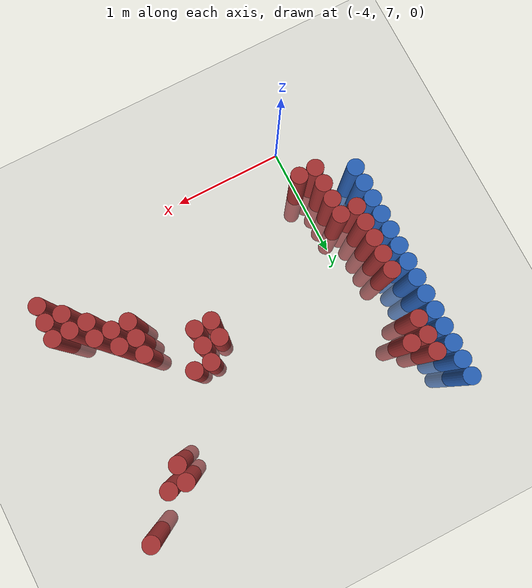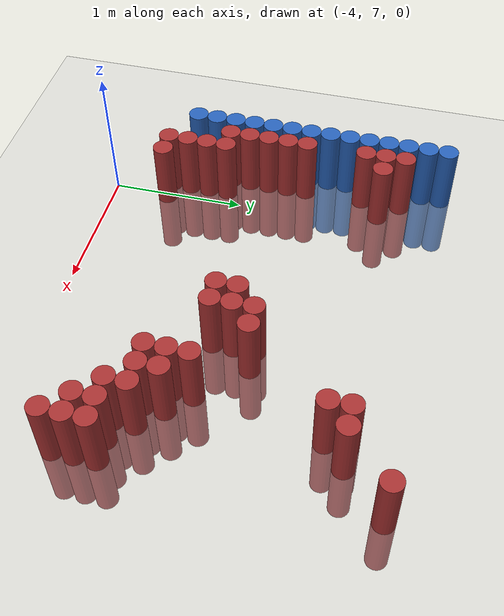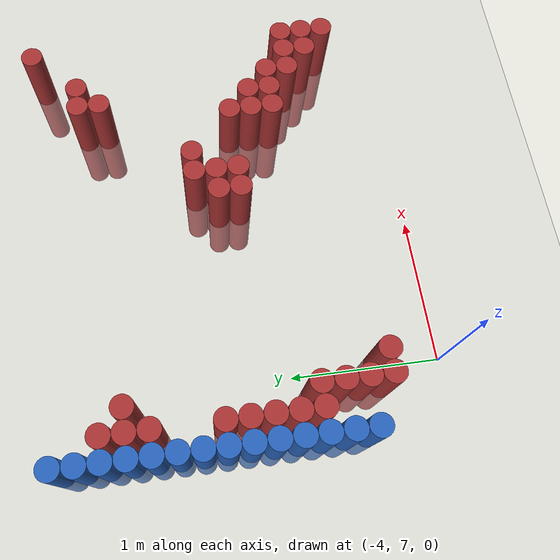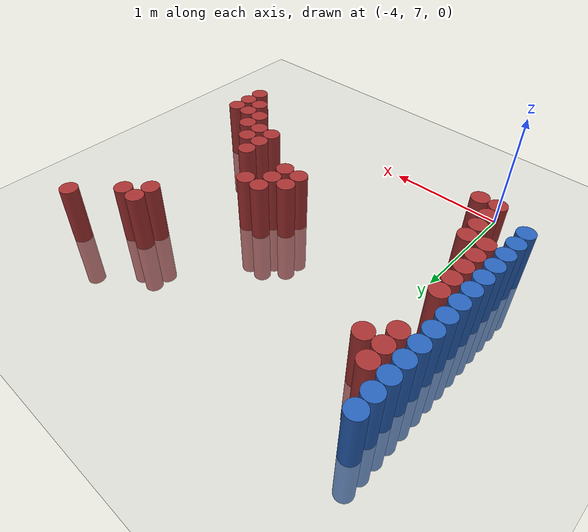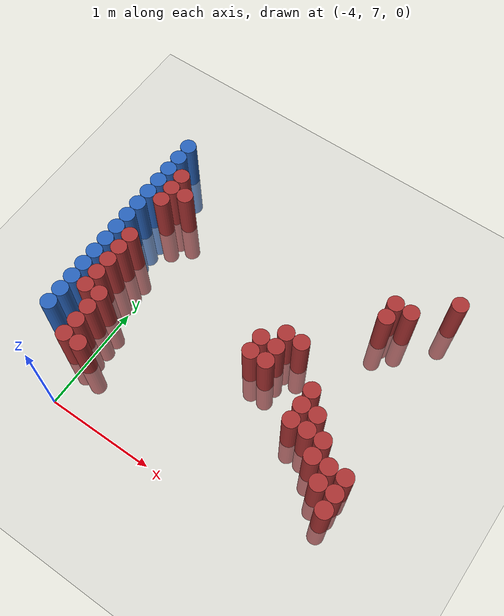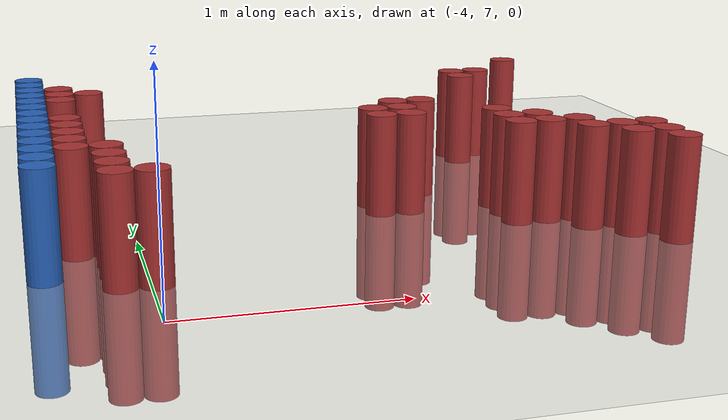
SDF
<sdf version="1.6">
 <world name="default">
  <model name="ground_plane">
   <static>1</static>
   <link name="link">
    <collision name="collision">
     <geometry><plane><normal>0 0 1</normal><size>100 100</size></plane></geometry>
     <surface><friction><ode><mu>100</mu><mu2>50</mu2></ode></friction></surface>
    </collision>
    <visual name="visual">
     <cast_shadows>0</cast_shadows>
     <geometry><plane><normal>0 0 1</normal><size>100 100</size></plane></geometry>
     <material>
      <script><uri>file://media/materials/scripts/gazebo.material</uri><name>Gazebo/Grey</name></script>
     </material>
    </visual>
   </link>
  </model>
  <model name="unit_cylinder_112">
   <static>1</static>
   <pose>-4.425000 7.575000 0.000000 0.000000 0.000000 0.000000</pose>
   <link name="link">
    <inertial>
     <mass>1</mass>
     <inertia><ixx>0.145833</ixx><ixy>0</ixy><ixz>0</ixz><iyy>0.145833</iyy><iyz>0</iyz><izz>0.125</izz></inertia>
    </inertial>
    <collision name="collision">
     <geometry><cylinder><radius>0.075000</radius><length>1</length></cylinder></geometry>
    </collision>
    <visual name="visual">
     <geometry><cylinder><radius>0.075000</radius><length>1</length></cylinder></geometry>
     <material>
      <ambient>0.152000 0.379000 0.720000 1</ambient>
      <diffuse>0.152000 0.379000 0.720000 1</diffuse>
     </material>
     <material>
      <script><name>Gazebo/Grey</name><uri>file://media/materials/scripts/gazebo.material</uri></script>
     </material>
    </visual>
   </link>
  </model>
  <model name="unit_cylinder_113">
   <static>1</static>
   <pose>-4.425000 7.725000 0.000000 0.000000 0.000000 0.000000</pose>
   <link name="link">
    <inertial>
     <mass>1</mass>
     <inertia><ixx>0.145833</ixx><ixy>0</ixy><ixz>0</ixz><iyy>0.145833</iyy><iyz>0</iyz><izz>0.125</izz></inertia>
    </inertial>
    <collision name="collision">
     <geometry><cylinder><radius>0.075000</radius><length>1</length></cylinder></geometry>
    </collision>
    <visual name="visual">
     <geometry><cylinder><radius>0.075000</radius><length>1</length></cylinder></geometry>
     <material>
      <ambient>0.152000 0.379000 0.720000 1</ambient>
      <diffuse>0.152000 0.379000 0.720000 1</diffuse>
     </material>
     <material>
      <script><name>Gazebo/Grey</name><uri>file://media/materials/scripts/gazebo.material</uri></script>
     </material>
    </visual>
   </link>
  </model>
  <model name="unit_cylinder_114">
   <static>1</static>
   <pose>-4.425000 7.875000 0.000000 0.000000 0.000000 0.000000</pose>
   <link name="link">
    <inertial>
     <mass>1</mass>
     <inertia><ixx>0.145833</ixx><ixy>0</ixy><ixz>0</ixz><iyy>0.145833</iyy><iyz>0</iyz><izz>0.125</izz></inertia>
    </inertial>
    <collision name="collision">
     <geometry><cylinder><radius>0.075000</radius><length>1</length></cylinder></geometry>
    </collision>
    <visual name="visual">
     <geometry><cylinder><radius>0.075000</radius><length>1</length></cylinder></geometry>
     <material>
      <ambient>0.152000 0.379000 0.720000 1</ambient>
      <diffuse>0.152000 0.379000 0.720000 1</diffuse>
     </material>
     <material>
      <script><name>Gazebo/Grey</name><uri>file://media/materials/scripts/gazebo.material</uri></script>
     </material>
    </visual>
   </link>
  </model>
  <model name="unit_cylinder_115">
   <static>1</static>
   <pose>-4.425000 8.025000 0.000000 0.000000 0.000000 0.000000</pose>
   <link name="link">
    <inertial>
     <mass>1</mass>
     <inertia><ixx>0.145833</ixx><ixy>0</ixy><ixz>0</ixz><iyy>0.145833</iyy><iyz>0</iyz><izz>0.125</izz></inertia>
    </inertial>
    <collision name="collision">
     <geometry><cylinder><radius>0.075000</radius><length>1</length></cylinder></geometry>
    </collision>
    <visual name="visual">
     <geometry><cylinder><radius>0.075000</radius><length>1</length></cylinder></geometry>
     <material>
      <ambient>0.152000 0.379000 0.720000 1</ambient>
      <diffuse>0.152000 0.379000 0.720000 1</diffuse>
     </material>
     <material>
      <script><name>Gazebo/Grey</name><uri>file://media/materials/scripts/gazebo.material</uri></script>
     </material>
    </visual>
   </link>
  </model>
  <model name="unit_cylinder_116">
   <static>1</static>
   <pose>-4.425000 8.175000 0.000000 0.000000 0.000000 0.000000</pose>
   <link name="link">
    <inertial>
     <mass>1</mass>
     <inertia><ixx>0.145833</ixx><ixy>0</ixy><ixz>0</ixz><iyy>0.145833</iyy><iyz>0</iyz><izz>0.125</izz></inertia>
    </inertial>
    <collision name="collision">
     <geometry><cylinder><radius>0.075000</radius><length>1</length></cylinder></geometry>
    </collision>
    <visual name="visual">
     <geometry><cylinder><radius>0.075000</radius><length>1</length></cylinder></geometry>
     <material>
      <ambient>0.152000 0.379000 0.720000 1</ambient>
      <diffuse>0.152000 0.379000 0.720000 1</diffuse>
     </material>
     <material>
      <script><name>Gazebo/Grey</name><uri>file://media/materials/scripts/gazebo.material</uri></script>
     </material>
    </visual>
   </link>
  </model>
  <model name="unit_cylinder_117">
   <static>1</static>
   <pose>-4.425000 8.325000 0.000000 0.000000 0.000000 0.000000</pose>
   <link name="link">
    <inertial>
     <mass>1</mass>
     <inertia><ixx>0.145833</ixx><ixy>0</ixy><ixz>0</ixz><iyy>0.145833</iyy><iyz>0</iyz><izz>0.125</izz></inertia>
    </inertial>
    <collision name="collision">
     <geometry><cylinder><radius>0.075000</radius><length>1</length></cylinder></geometry>
    </collision>
    <visual name="visual">
     <geometry><cylinder><radius>0.075000</radius><length>1</length></cylinder></geometry>
     <material>
      <ambient>0.152000 0.379000 0.720000 1</ambient>
      <diffuse>0.152000 0.379000 0.720000 1</diffuse>
     </material>
     <material>
      <script><name>Gazebo/Grey</name><uri>file://media/materials/scripts/gazebo.material</uri></script>
     </material>
    </visual>
   </link>
  </model>
  <model name="unit_cylinder_118">
   <static>1</static>
   <pose>-4.425000 8.475000 0.000000 0.000000 0.000000 0.000000</pose>
   <link name="link">
    <inertial>
     <mass>1</mass>
     <inertia><ixx>0.145833</ixx><ixy>0</ixy><ixz>0</ixz><iyy>0.145833</iyy><iyz>0</iyz><izz>0.125</izz></inertia>
    </inertial>
    <collision name="collision">
     <geometry><cylinder><radius>0.075000</radius><length>1</length></cylinder></geometry>
    </collision>
    <visual name="visual">
     <geometry><cylinder><radius>0.075000</radius><length>1</length></cylinder></geometry>
     <material>
      <ambient>0.152000 0.379000 0.720000 1</ambient>
      <diffuse>0.152000 0.379000 0.720000 1</diffuse>
     </material>
     <material>
      <script><name>Gazebo/Grey</name><uri>file://media/materials/scripts/gazebo.material</uri></script>
     </material>
    </visual>
   </link>
  </model>
  <model name="unit_cylinder_119">
   <static>1</static>
   <pose>-4.425000 8.625000 0.000000 0.000000 0.000000 0.000000</pose>
   <link name="link">
    <inertial>
     <mass>1</mass>
     <inertia><ixx>0.145833</ixx><ixy>0</ixy><ixz>0</ixz><iyy>0.145833</iyy><iyz>0</iyz><izz>0.125</izz></inertia>
    </inertial>
    <collision name="collision">
     <geometry><cylinder><radius>0.075000</radius><length>1</length></cylinder></geometry>
    </collision>
    <visual name="visual">
     <geometry><cylinder><radius>0.075000</radius><length>1</length></cylinder></geometry>
     <material>
      <ambient>0.152000 0.379000 0.720000 1</ambient>
      <diffuse>0.152000 0.379000 0.720000 1</diffuse>
     </material>
     <material>
      <script><name>Gazebo/Grey</name><uri>file://media/materials/scripts/gazebo.material</uri></script>
     </material>
    </visual>
   </link>
  </model>
  <model name="unit_cylinder_120">
   <static>1</static>
   <pose>-4.425000 8.775000 0.000000 0.000000 0.000000 0.000000</pose>
   <link name="link">
    <inertial>
     <mass>1</mass>
     <inertia><ixx>0.145833</ixx><ixy>0</ixy><ixz>0</ixz><iyy>0.145833</iyy><iyz>0</iyz><izz>0.125</izz></inertia>
    </inertial>
    <collision name="collision">
     <geometry><cylinder><radius>0.075000</radius><length>1</length></cylinder></geometry>
    </collision>
    <visual name="visual">
     <geometry><cylinder><radius>0.075000</radius><length>1</length></cylinder></geometry>
     <material>
      <ambient>0.152000 0.379000 0.720000 1</ambient>
      <diffuse>0.152000 0.379000 0.720000 1</diffuse>
     </material>
     <material>
      <script><name>Gazebo/Grey</name><uri>file://media/materials/scripts/gazebo.material</uri></script>
     </material>
    </visual>
   </link>
  </model>
  <model name="unit_cylinder_121">
   <static>1</static>
   <pose>-4.425000 8.925000 0.000000 0.000000 0.000000 0.000000</pose>
   <link name="link">
    <inertial>
     <mass>1</mass>
     <inertia><ixx>0.145833</ixx><ixy>0</ixy><ixz>0</ixz><iyy>0.145833</iyy><iyz>0</iyz><izz>0.125</izz></inertia>
    </inertial>
    <collision name="collision">
     <geometry><cylinder><radius>0.075000</radius><length>1</length></cylinder></geometry>
    </collision>
    <visual name="visual">
     <geometry><cylinder><radius>0.075000</radius><length>1</length></cylinder></geometry>
     <material>
      <ambient>0.152000 0.379000 0.720000 1</ambient>
      <diffuse>0.152000 0.379000 0.720000 1</diffuse>
     </material>
     <material>
      <script><name>Gazebo/Grey</name><uri>file://media/materials/scripts/gazebo.material</uri></script>
     </material>
    </visual>
   </link>
  </model>
  <model name="unit_cylinder_122">
   <static>1</static>
   <pose>-4.425000 9.075000 0.000000 0.000000 0.000000 0.000000</pose>
   <link name="link">
    <inertial>
     <mass>1</mass>
     <inertia><ixx>0.145833</ixx><ixy>0</ixy><ixz>0</ixz><iyy>0.145833</iyy><iyz>0</iyz><izz>0.125</izz></inertia>
    </inertial>
    <collision name="collision">
     <geometry><cylinder><radius>0.075000</radius><length>1</length></cylinder></geometry>
    </collision>
    <visual name="visual">
     <geometry><cylinder><radius>0.075000</radius><length>1</length></cylinder></geometry>
     <material>
      <ambient>0.152000 0.379000 0.720000 1</ambient>
      <diffuse>0.152000 0.379000 0.720000 1</diffuse>
     </material>
     <material>
      <script><name>Gazebo/Grey</name><uri>file://media/materials/scripts/gazebo.material</uri></script>
     </material>
    </visual>
   </link>
  </model>
  <model name="unit_cylinder_123">
   <static>1</static>
   <pose>-4.425000 9.225000 0.000000 0.000000 0.000000 0.000000</pose>
   <link name="link">
    <inertial>
     <mass>1</mass>
     <inertia><ixx>0.145833</ixx><ixy>0</ixy><ixz>0</ixz><iyy>0.145833</iyy><iyz>0</iyz><izz>0.125</izz></inertia>
    </inertial>
    <collision name="collision">
     <geometry><cylinder><radius>0.075000</radius><length>1</length></cylinder></geometry>
    </collision>
    <visual name="visual">
     <geometry><cylinder><radius>0.075000</radius><length>1</length></cylinder></geometry>
     <material>
      <ambient>0.152000 0.379000 0.720000 1</ambient>
      <diffuse>0.152000 0.379000 0.720000 1</diffuse>
     </material>
     <material>
      <script><name>Gazebo/Grey</name><uri>file://media/materials/scripts/gazebo.material</uri></script>
     </material>
    </visual>
   </link>
  </model>
  <model name="unit_cylinder_124">
   <static>1</static>
   <pose>-4.425000 9.375000 0.000000 0.000000 0.000000 0.000000</pose>
   <link name="link">
    <inertial>
     <mass>1</mass>
     <inertia><ixx>0.145833</ixx><ixy>0</ixy><ixz>0</ixz><iyy>0.145833</iyy><iyz>0</iyz><izz>0.125</izz></inertia>
    </inertial>
    <collision name="collision">
     <geometry><cylinder><radius>0.075000</radius><length>1</length></cylinder></geometry>
    </collision>
    <visual name="visual">
     <geometry><cylinder><radius>0.075000</radius><length>1</length></cylinder></geometry>
     <material>
      <ambient>0.152000 0.379000 0.720000 1</ambient>
      <diffuse>0.152000 0.379000 0.720000 1</diffuse>
     </material>
     <material>
      <script><name>Gazebo/Grey</name><uri>file://media/materials/scripts/gazebo.material</uri></script>
     </material>
    </visual>
   </link>
  </model>
  <model name="unit_cylinder_125">
   <static>1</static>
   <pose>-4.425000 9.525000 0.000000 0.000000 0.000000 0.000000</pose>
   <link name="link">
    <inertial>
     <mass>1</mass>
     <inertia><ixx>0.145833</ixx><ixy>0</ixy><ixz>0</ixz><iyy>0.145833</iyy><iyz>0</iyz><izz>0.125</izz></inertia>
    </inertial>
    <collision name="collision">
     <geometry><cylinder><radius>0.075000</radius><length>1</length></cylinder></geometry>
    </collision>
    <visual name="visual">
     <geometry><cylinder><radius>0.075000</radius><length>1</length></cylinder></geometry>
     <material>
      <ambient>0.152000 0.379000 0.720000 1</ambient>
      <diffuse>0.152000 0.379000 0.720000 1</diffuse>
     </material>
     <material>
      <script><name>Gazebo/Grey</name><uri>file://media/materials/scripts/gazebo.material</uri></script>
     </material>
    </visual>
   </link>
  </model>
  <model name="unit_cylinder_131">
   <static>1</static>
   <pose>-4.275000 7.875000 0.000000 0.000000 0.000000 0.000000</pose>
   <link name="link">
    <inertial>
     <mass>1</mass>
     <inertia><ixx>0.145833</ixx><ixy>0</ixy><ixz>0</ixz><iyy>0.145833</iyy><iyz>0</iyz><izz>0.125</izz></inertia>
    </inertial>
    <collision name="collision">
     <geometry><cylinder><radius>0.075000</radius><length>1</length></cylinder></geometry>
    </collision>
    <visual name="visual">
     <geometry><cylinder><radius>0.075000</radius><length>1</length></cylinder></geometry>
     <material>
      <ambient>0.648000 0.192000 0.192000 1</ambient>
      <diffuse>0.648000 0.192000 0.192000 1</diffuse>
     </material>
     <material>
      <script><name>Gazebo/Grey</name><uri>file://media/materials/scripts/gazebo.material</uri></script>
     </material>
    </visual>
   </link>
  </model>
  <model name="unit_cylinder_132">
   <static>1</static>
   <pose>-4.275000 8.025000 0.000000 0.000000 0.000000 0.000000</pose>
   <link name="link">
    <inertial>
     <mass>1</mass>
     <inertia><ixx>0.145833</ixx><ixy>0</ixy><ixz>0</ixz><iyy>0.145833</iyy><iyz>0</iyz><izz>0.125</izz></inertia>
    </inertial>
    <collision name="collision">
     <geometry><cylinder><radius>0.075000</radius><length>1</length></cylinder></geometry>
    </collision>
    <visual name="visual">
     <geometry><cylinder><radius>0.075000</radius><length>1</length></cylinder></geometry>
     <material>
      <ambient>0.648000 0.192000 0.192000 1</ambient>
      <diffuse>0.648000 0.192000 0.192000 1</diffuse>
     </material>
     <material>
      <script><name>Gazebo/Grey</name><uri>file://media/materials/scripts/gazebo.material</uri></script>
     </material>
    </visual>
   </link>
  </model>
  <model name="unit_cylinder_133">
   <static>1</static>
   <pose>-4.275000 8.175000 0.000000 0.000000 0.000000 0.000000</pose>
   <link name="link">
    <inertial>
     <mass>1</mass>
     <inertia><ixx>0.145833</ixx><ixy>0</ixy><ixz>0</ixz><iyy>0.145833</iyy><iyz>0</iyz><izz>0.125</izz></inertia>
    </inertial>
    <collision name="collision">
     <geometry><cylinder><radius>0.075000</radius><length>1</length></cylinder></geometry>
    </collision>
    <visual name="visual">
     <geometry><cylinder><radius>0.075000</radius><length>1</length></cylinder></geometry>
     <material>
      <ambient>0.648000 0.192000 0.192000 1</ambient>
      <diffuse>0.648000 0.192000 0.192000 1</diffuse>
     </material>
     <material>
      <script><name>Gazebo/Grey</name><uri>file://media/materials/scripts/gazebo.material</uri></script>
     </material>
    </visual>
   </link>
  </model>
  <model name="unit_cylinder_134">
   <static>1</static>
   <pose>-4.275000 8.325000 0.000000 0.000000 0.000000 0.000000</pose>
   <link name="link">
    <inertial>
     <mass>1</mass>
     <inertia><ixx>0.145833</ixx><ixy>0</ixy><ixz>0</ixz><iyy>0.145833</iyy><iyz>0</iyz><izz>0.125</izz></inertia>
    </inertial>
    <collision name="collision">
     <geometry><cylinder><radius>0.075000</radius><length>1</length></cylinder></geometry>
    </collision>
    <visual name="visual">
     <geometry><cylinder><radius>0.075000</radius><length>1</length></cylinder></geometry>
     <material>
      <ambient>0.648000 0.192000 0.192000 1</ambient>
      <diffuse>0.648000 0.192000 0.192000 1</diffuse>
     </material>
     <material>
      <script><name>Gazebo/Grey</name><uri>file://media/materials/scripts/gazebo.material</uri></script>
     </material>
    </visual>
   </link>
  </model>
  <model name="unit_cylinder_135">
   <static>1</static>
   <pose>-4.275000 8.475000 0.000000 0.000000 0.000000 0.000000</pose>
   <link name="link">
    <inertial>
     <mass>1</mass>
     <inertia><ixx>0.145833</ixx><ixy>0</ixy><ixz>0</ixz><iyy>0.145833</iyy><iyz>0</iyz><izz>0.125</izz></inertia>
    </inertial>
    <collision name="collision">
     <geometry><cylinder><radius>0.075000</radius><length>1</length></cylinder></geometry>
    </collision>
    <visual name="visual">
     <geometry><cylinder><radius>0.075000</radius><length>1</length></cylinder></geometry>
     <material>
      <ambient>0.648000 0.192000 0.192000 1</ambient>
      <diffuse>0.648000 0.192000 0.192000 1</diffuse>
     </material>
     <material>
      <script><name>Gazebo/Grey</name><uri>file://media/materials/scripts/gazebo.material</uri></script>
     </material>
    </visual>
   </link>
  </model>
  <model name="unit_cylinder_136">
   <static>1</static>
   <pose>-4.275000 8.925000 0.000000 0.000000 0.000000 0.000000</pose>
   <link name="link">
    <inertial>
     <mass>1</mass>
     <inertia><ixx>0.145833</ixx><ixy>0</ixy><ixz>0</ixz><iyy>0.145833</iyy><iyz>0</iyz><izz>0.125</izz></inertia>
    </inertial>
    <collision name="collision">
     <geometry><cylinder><radius>0.075000</radius><length>1</length></cylinder></geometry>
    </collision>
    <visual name="visual">
     <geometry><cylinder><radius>0.075000</radius><length>1</length></cylinder></geometry>
     <material>
      <ambient>0.648000 0.192000 0.192000 1</ambient>
      <diffuse>0.648000 0.192000 0.192000 1</diffuse>
     </material>
     <material>
      <script><name>Gazebo/Grey</name><uri>file://media/materials/scripts/gazebo.material</uri></script>
     </material>
    </visual>
   </link>
  </model>
  <model name="unit_cylinder_137">
   <static>1</static>
   <pose>-4.275000 9.075000 0.000000 0.000000 0.000000 0.000000</pose>
   <link name="link">
    <inertial>
     <mass>1</mass>
     <inertia><ixx>0.145833</ixx><ixy>0</ixy><ixz>0</ixz><iyy>0.145833</iyy><iyz>0</iyz><izz>0.125</izz></inertia>
    </inertial>
    <collision name="collision">
     <geometry><cylinder><radius>0.075000</radius><length>1</length></cylinder></geometry>
    </collision>
    <visual name="visual">
     <geometry><cylinder><radius>0.075000</radius><length>1</length></cylinder></geometry>
     <material>
      <ambient>0.648000 0.192000 0.192000 1</ambient>
      <diffuse>0.648000 0.192000 0.192000 1</diffuse>
     </material>
     <material>
      <script><name>Gazebo/Grey</name><uri>file://media/materials/scripts/gazebo.material</uri></script>
     </material>
    </visual>
   </link>
  </model>
  <model name="unit_cylinder_138">
   <static>1</static>
   <pose>-4.275000 9.225000 0.000000 0.000000 0.000000 0.000000</pose>
   <link name="link">
    <inertial>
     <mass>1</mass>
     <inertia><ixx>0.145833</ixx><ixy>0</ixy><ixz>0</ixz><iyy>0.145833</iyy><iyz>0</iyz><izz>0.125</izz></inertia>
    </inertial>
    <collision name="collision">
     <geometry><cylinder><radius>0.075000</radius><length>1</length></cylinder></geometry>
    </collision>
    <visual name="visual">
     <geometry><cylinder><radius>0.075000</radius><length>1</length></cylinder></geometry>
     <material>
      <ambient>0.648000 0.192000 0.192000 1</ambient>
      <diffuse>0.648000 0.192000 0.192000 1</diffuse>
     </material>
     <material>
      <script><name>Gazebo/Grey</name><uri>file://media/materials/scripts/gazebo.material</uri></script>
     </material>
    </visual>
   </link>
  </model>
  <model name="unit_cylinder_148">
   <static>1</static>
   <pose>-4.125000 7.425000 0.000000 0.000000 0.000000 0.000000</pose>
   <link name="link">
    <inertial>
     <mass>1</mass>
     <inertia><ixx>0.145833</ixx><ixy>0</ixy><ixz>0</ixz><iyy>0.145833</iyy><iyz>0</iyz><izz>0.125</izz></inertia>
    </inertial>
    <collision name="collision">
     <geometry><cylinder><radius>0.075000</radius><length>1</length></cylinder></geometry>
    </collision>
    <visual name="visual">
     <geometry><cylinder><radius>0.075000</radius><length>1</length></cylinder></geometry>
     <material>
      <ambient>0.648000 0.192000 0.192000 1</ambient>
      <diffuse>0.648000 0.192000 0.192000 1</diffuse>
     </material>
     <material>
      <script><name>Gazebo/Grey</name><uri>file://media/materials/scripts/gazebo.material</uri></script>
     </material>
    </visual>
   </link>
  </model>
  <model name="unit_cylinder_149">
   <static>1</static>
   <pose>-4.125000 7.575000 0.000000 0.000000 0.000000 0.000000</pose>
   <link name="link">
    <inertial>
     <mass>1</mass>
     <inertia><ixx>0.145833</ixx><ixy>0</ixy><ixz>0</ixz><iyy>0.145833</iyy><iyz>0</iyz><izz>0.125</izz></inertia>
    </inertial>
    <collision name="collision">
     <geometry><cylinder><radius>0.075000</radius><length>1</length></cylinder></geometry>
    </collision>
    <visual name="visual">
     <geometry><cylinder><radius>0.075000</radius><length>1</length></cylinder></geometry>
     <material>
      <ambient>0.648000 0.192000 0.192000 1</ambient>
      <diffuse>0.648000 0.192000 0.192000 1</diffuse>
     </material>
     <material>
      <script><name>Gazebo/Grey</name><uri>file://media/materials/scripts/gazebo.material</uri></script>
     </material>
    </visual>
   </link>
  </model>
  <model name="unit_cylinder_150">
   <static>1</static>
   <pose>-4.125000 7.725000 0.000000 0.000000 0.000000 0.000000</pose>
   <link name="link">
    <inertial>
     <mass>1</mass>
     <inertia><ixx>0.145833</ixx><ixy>0</ixy><ixz>0</ixz><iyy>0.145833</iyy><iyz>0</iyz><izz>0.125</izz></inertia>
    </inertial>
    <collision name="collision">
     <geometry><cylinder><radius>0.075000</radius><length>1</length></cylinder></geometry>
    </collision>
    <visual name="visual">
     <geometry><cylinder><radius>0.075000</radius><length>1</length></cylinder></geometry>
     <material>
      <ambient>0.648000 0.192000 0.192000 1</ambient>
      <diffuse>0.648000 0.192000 0.192000 1</diffuse>
     </material>
     <material>
      <script><name>Gazebo/Grey</name><uri>file://media/materials/scripts/gazebo.material</uri></script>
     </material>
    </visual>
   </link>
  </model>
  <model name="unit_cylinder_151">
   <static>1</static>
   <pose>-4.125000 7.875000 0.000000 0.000000 0.000000 0.000000</pose>
   <link name="link">
    <inertial>
     <mass>1</mass>
     <inertia><ixx>0.145833</ixx><ixy>0</ixy><ixz>0</ixz><iyy>0.145833</iyy><iyz>0</iyz><izz>0.125</izz></inertia>
    </inertial>
    <collision name="collision">
     <geometry><cylinder><radius>0.075000</radius><length>1</length></cylinder></geometry>
    </collision>
    <visual name="visual">
     <geometry><cylinder><radius>0.075000</radius><length>1</length></cylinder></geometry>
     <material>
      <ambient>0.648000 0.192000 0.192000 1</ambient>
      <diffuse>0.648000 0.192000 0.192000 1</diffuse>
     </material>
     <material>
      <script><name>Gazebo/Grey</name><uri>file://media/materials/scripts/gazebo.material</uri></script>
     </material>
    </visual>
   </link>
  </model>
  <model name="unit_cylinder_152">
   <static>1</static>
   <pose>-4.125000 9.075000 0.000000 0.000000 0.000000 0.000000</pose>
   <link name="link">
    <inertial>
     <mass>1</mass>
     <inertia><ixx>0.145833</ixx><ixy>0</ixy><ixz>0</ixz><iyy>0.145833</iyy><iyz>0</iyz><izz>0.125</izz></inertia>
    </inertial>
    <collision name="collision">
     <geometry><cylinder><radius>0.075000</radius><length>1</length></cylinder></geometry>
    </collision>
    <visual name="visual">
     <geometry><cylinder><radius>0.075000</radius><length>1</length></cylinder></geometry>
     <material>
      <ambient>0.648000 0.192000 0.192000 1</ambient>
      <diffuse>0.648000 0.192000 0.192000 1</diffuse>
     </material>
     <material>
      <script><name>Gazebo/Grey</name><uri>file://media/materials/scripts/gazebo.material</uri></script>
     </material>
    </visual>
   </link>
  </model>
  <model name="unit_cylinder_159">
   <static>1</static>
   <pose>-3.975000 7.425000 0.000000 0.000000 0.000000 0.000000</pose>
   <link name="link">
    <inertial>
     <mass>1</mass>
     <inertia><ixx>0.145833</ixx><ixy>0</ixy><ixz>0</ixz><iyy>0.145833</iyy><iyz>0</iyz><izz>0.125</izz></inertia>
    </inertial>
    <collision name="collision">
     <geometry><cylinder><radius>0.075000</radius><length>1</length></cylinder></geometry>
    </collision>
    <visual name="visual">
     <geometry><cylinder><radius>0.075000</radius><length>1</length></cylinder></geometry>
     <material>
      <ambient>0.648000 0.192000 0.192000 1</ambient>
      <diffuse>0.648000 0.192000 0.192000 1</diffuse>
     </material>
     <material>
      <script><name>Gazebo/Grey</name><uri>file://media/materials/scripts/gazebo.material</uri></script>
     </material>
    </visual>
   </link>
  </model>
  <model name="unit_cylinder_171">
   <static>1</static>
   <pose>-2.775000 8.175000 0.000000 0.000000 0.000000 0.000000</pose>
   <link name="link">
    <inertial>
     <mass>1</mass>
     <inertia><ixx>0.145833</ixx><ixy>0</ixy><ixz>0</ixz><iyy>0.145833</iyy><iyz>0</iyz><izz>0.125</izz></inertia>
    </inertial>
    <collision name="collision">
     <geometry><cylinder><radius>0.075000</radius><length>1</length></cylinder></geometry>
    </collision>
    <visual name="visual">
     <geometry><cylinder><radius>0.075000</radius><length>1</length></cylinder></geometry>
     <material>
      <ambient>0.648000 0.192000 0.192000 1</ambient>
      <diffuse>0.648000 0.192000 0.192000 1</diffuse>
     </material>
     <material>
      <script><name>Gazebo/Grey</name><uri>file://media/materials/scripts/gazebo.material</uri></script>
     </material>
    </visual>
   </link>
  </model>
  <model name="unit_cylinder_172">
   <static>1</static>
   <pose>-2.775000 8.325000 0.000000 0.000000 0.000000 0.000000</pose>
   <link name="link">
    <inertial>
     <mass>1</mass>
     <inertia><ixx>0.145833</ixx><ixy>0</ixy><ixz>0</ixz><iyy>0.145833</iyy><iyz>0</iyz><izz>0.125</izz></inertia>
    </inertial>
    <collision name="collision">
     <geometry><cylinder><radius>0.075000</radius><length>1</length></cylinder></geometry>
    </collision>
    <visual name="visual">
     <geometry><cylinder><radius>0.075000</radius><length>1</length></cylinder></geometry>
     <material>
      <ambient>0.648000 0.192000 0.192000 1</ambient>
      <diffuse>0.648000 0.192000 0.192000 1</diffuse>
     </material>
     <material>
      <script><name>Gazebo/Grey</name><uri>file://media/materials/scripts/gazebo.material</uri></script>
     </material>
    </visual>
   </link>
  </model>
  <model name="unit_cylinder_175">
   <static>1</static>
   <pose>-2.625000 8.175000 0.000000 0.000000 0.000000 0.000000</pose>
   <link name="link">
    <inertial>
     <mass>1</mass>
     <inertia><ixx>0.145833</ixx><ixy>0</ixy><ixz>0</ixz><iyy>0.145833</iyy><iyz>0</iyz><izz>0.125</izz></inertia>
    </inertial>
    <collision name="collision">
     <geometry><cylinder><radius>0.075000</radius><length>1</length></cylinder></geometry>
    </collision>
    <visual name="visual">
     <geometry><cylinder><radius>0.075000</radius><length>1</length></cylinder></geometry>
     <material>
      <ambient>0.648000 0.192000 0.192000 1</ambient>
      <diffuse>0.648000 0.192000 0.192000 1</diffuse>
     </material>
     <material>
      <script><name>Gazebo/Grey</name><uri>file://media/materials/scripts/gazebo.material</uri></script>
     </material>
    </visual>
   </link>
  </model>
  <model name="unit_cylinder_176">
   <static>1</static>
   <pose>-2.625000 8.325000 0.000000 0.000000 0.000000 0.000000</pose>
   <link name="link">
    <inertial>
     <mass>1</mass>
     <inertia><ixx>0.145833</ixx><ixy>0</ixy><ixz>0</ixz><iyy>0.145833</iyy><iyz>0</iyz><izz>0.125</izz></inertia>
    </inertial>
    <collision name="collision">
     <geometry><cylinder><radius>0.075000</radius><length>1</length></cylinder></geometry>
    </collision>
    <visual name="visual">
     <geometry><cylinder><radius>0.075000</radius><length>1</length></cylinder></geometry>
     <material>
      <ambient>0.648000 0.192000 0.192000 1</ambient>
      <diffuse>0.648000 0.192000 0.192000 1</diffuse>
     </material>
     <material>
      <script><name>Gazebo/Grey</name><uri>file://media/materials/scripts/gazebo.material</uri></script>
     </material>
    </visual>
   </link>
  </model>
  <model name="unit_cylinder_177">
   <static>1</static>
   <pose>-2.625000 8.475000 0.000000 0.000000 0.000000 0.000000</pose>
   <link name="link">
    <inertial>
     <mass>1</mass>
     <inertia><ixx>0.145833</ixx><ixy>0</ixy><ixz>0</ixz><iyy>0.145833</iyy><iyz>0</iyz><izz>0.125</izz></inertia>
    </inertial>
    <collision name="collision">
     <geometry><cylinder><radius>0.075000</radius><length>1</length></cylinder></geometry>
    </collision>
    <visual name="visual">
     <geometry><cylinder><radius>0.075000</radius><length>1</length></cylinder></geometry>
     <material>
      <ambient>0.648000 0.192000 0.192000 1</ambient>
      <diffuse>0.648000 0.192000 0.192000 1</diffuse>
     </material>
     <material>
      <script><name>Gazebo/Grey</name><uri>file://media/materials/scripts/gazebo.material</uri></script>
     </material>
    </visual>
   </link>
  </model>
  <model name="unit_cylinder_180">
   <static>1</static>
   <pose>-2.475000 8.475000 0.000000 0.000000 0.000000 0.000000</pose>
   <link name="link">
    <inertial>
     <mass>1</mass>
     <inertia><ixx>0.145833</ixx><ixy>0</ixy><ixz>0</ixz><iyy>0.145833</iyy><iyz>0</iyz><izz>0.125</izz></inertia>
    </inertial>
    <collision name="collision">
     <geometry><cylinder><radius>0.075000</radius><length>1</length></cylinder></geometry>
    </collision>
    <visual name="visual">
     <geometry><cylinder><radius>0.075000</radius><length>1</length></cylinder></geometry>
     <material>
      <ambient>0.648000 0.192000 0.192000 1</ambient>
      <diffuse>0.648000 0.192000 0.192000 1</diffuse>
     </material>
     <material>
      <script><name>Gazebo/Grey</name><uri>file://media/materials/scripts/gazebo.material</uri></script>
     </material>
    </visual>
   </link>
  </model>
  <model name="unit_cylinder_190">
   <static>1</static>
   <pose>-2.175000 7.875000 0.000000 0.000000 0.000000 0.000000</pose>
   <link name="link">
    <inertial>
     <mass>1</mass>
     <inertia><ixx>0.145833</ixx><ixy>0</ixy><ixz>0</ixz><iyy>0.145833</iyy><iyz>0</iyz><izz>0.125</izz></inertia>
    </inertial>
    <collision name="collision">
     <geometry><cylinder><radius>0.075000</radius><length>1</length></cylinder></geometry>
    </collision>
    <visual name="visual">
     <geometry><cylinder><radius>0.075000</radius><length>1</length></cylinder></geometry>
     <material>
      <ambient>0.648000 0.192000 0.192000 1</ambient>
      <diffuse>0.648000 0.192000 0.192000 1</diffuse>
     </material>
     <material>
      <script><name>Gazebo/Grey</name><uri>file://media/materials/scripts/gazebo.material</uri></script>
     </material>
    </visual>
   </link>
  </model>
  <model name="unit_cylinder_191">
   <static>1</static>
   <pose>-2.175000 8.025000 0.000000 0.000000 0.000000 0.000000</pose>
   <link name="link">
    <inertial>
     <mass>1</mass>
     <inertia><ixx>0.145833</ixx><ixy>0</ixy><ixz>0</ixz><iyy>0.145833</iyy><iyz>0</iyz><izz>0.125</izz></inertia>
    </inertial>
    <collision name="collision">
     <geometry><cylinder><radius>0.075000</radius><length>1</length></cylinder></geometry>
    </collision>
    <visual name="visual">
     <geometry><cylinder><radius>0.075000</radius><length>1</length></cylinder></geometry>
     <material>
      <ambient>0.648000 0.192000 0.192000 1</ambient>
      <diffuse>0.648000 0.192000 0.192000 1</diffuse>
     </material>
     <material>
      <script><name>Gazebo/Grey</name><uri>file://media/materials/scripts/gazebo.material</uri></script>
     </material>
    </visual>
   </link>
  </model>
  <model name="unit_cylinder_192">
   <static>1</static>
   <pose>-2.175000 8.175000 0.000000 0.000000 0.000000 0.000000</pose>
   <link name="link">
    <inertial>
     <mass>1</mass>
     <inertia><ixx>0.145833</ixx><ixy>0</ixy><ixz>0</ixz><iyy>0.145833</iyy><iyz>0</iyz><izz>0.125</izz></inertia>
    </inertial>
    <collision name="collision">
     <geometry><cylinder><radius>0.075000</radius><length>1</length></cylinder></geometry>
    </collision>
    <visual name="visual">
     <geometry><cylinder><radius>0.075000</radius><length>1</length></cylinder></geometry>
     <material>
      <ambient>0.648000 0.192000 0.192000 1</ambient>
      <diffuse>0.648000 0.192000 0.192000 1</diffuse>
     </material>
     <material>
      <script><name>Gazebo/Grey</name><uri>file://media/materials/scripts/gazebo.material</uri></script>
     </material>
    </visual>
   </link>
  </model>
  <model name="unit_cylinder_197">
   <static>1</static>
   <pose>-2.025000 7.875000 0.000000 0.000000 0.000000 0.000000</pose>
   <link name="link">
    <inertial>
     <mass>1</mass>
     <inertia><ixx>0.145833</ixx><ixy>0</ixy><ixz>0</ixz><iyy>0.145833</iyy><iyz>0</iyz><izz>0.125</izz></inertia>
    </inertial>
    <collision name="collision">
     <geometry><cylinder><radius>0.075000</radius><length>1</length></cylinder></geometry>
    </collision>
    <visual name="visual">
     <geometry><cylinder><radius>0.075000</radius><length>1</length></cylinder></geometry>
     <material>
      <ambient>0.648000 0.192000 0.192000 1</ambient>
      <diffuse>0.648000 0.192000 0.192000 1</diffuse>
     </material>
     <material>
      <script><name>Gazebo/Grey</name><uri>file://media/materials/scripts/gazebo.material</uri></script>
     </material>
    </visual>
   </link>
  </model>
  <model name="unit_cylinder_198">
   <static>1</static>
   <pose>-2.025000 8.025000 0.000000 0.000000 0.000000 0.000000</pose>
   <link name="link">
    <inertial>
     <mass>1</mass>
     <inertia><ixx>0.145833</ixx><ixy>0</ixy><ixz>0</ixz><iyy>0.145833</iyy><iyz>0</iyz><izz>0.125</izz></inertia>
    </inertial>
    <collision name="collision">
     <geometry><cylinder><radius>0.075000</radius><length>1</length></cylinder></geometry>
    </collision>
    <visual name="visual">
     <geometry><cylinder><radius>0.075000</radius><length>1</length></cylinder></geometry>
     <material>
      <ambient>0.648000 0.192000 0.192000 1</ambient>
      <diffuse>0.648000 0.192000 0.192000 1</diffuse>
     </material>
     <material>
      <script><name>Gazebo/Grey</name><uri>file://media/materials/scripts/gazebo.material</uri></script>
     </material>
    </visual>
   </link>
  </model>
  <model name="unit_cylinder_199">
   <static>1</static>
   <pose>-2.025000 9.075000 0.000000 0.000000 0.000000 0.000000</pose>
   <link name="link">
    <inertial>
     <mass>1</mass>
     <inertia><ixx>0.145833</ixx><ixy>0</ixy><ixz>0</ixz><iyy>0.145833</iyy><iyz>0</iyz><izz>0.125</izz></inertia>
    </inertial>
    <collision name="collision">
     <geometry><cylinder><radius>0.075000</radius><length>1</length></cylinder></geometry>
    </collision>
    <visual name="visual">
     <geometry><cylinder><radius>0.075000</radius><length>1</length></cylinder></geometry>
     <material>
      <ambient>0.648000 0.192000 0.192000 1</ambient>
      <diffuse>0.648000 0.192000 0.192000 1</diffuse>
     </material>
     <material>
      <script><name>Gazebo/Grey</name><uri>file://media/materials/scripts/gazebo.material</uri></script>
     </material>
    </visual>
   </link>
  </model>
  <model name="unit_cylinder_200">
   <static>1</static>
   <pose>-2.025000 9.225000 0.000000 0.000000 0.000000 0.000000</pose>
   <link name="link">
    <inertial>
     <mass>1</mass>
     <inertia><ixx>0.145833</ixx><ixy>0</ixy><ixz>0</ixz><iyy>0.145833</iyy><iyz>0</iyz><izz>0.125</izz></inertia>
    </inertial>
    <collision name="collision">
     <geometry><cylinder><radius>0.075000</radius><length>1</length></cylinder></geometry>
    </collision>
    <visual name="visual">
     <geometry><cylinder><radius>0.075000</radius><length>1</length></cylinder></geometry>
     <material>
      <ambient>0.648000 0.192000 0.192000 1</ambient>
      <diffuse>0.648000 0.192000 0.192000 1</diffuse>
     </material>
     <material>
      <script><name>Gazebo/Grey</name><uri>file://media/materials/scripts/gazebo.material</uri></script>
     </material>
    </visual>
   </link>
  </model>
  <model name="unit_cylinder_206">
   <static>1</static>
   <pose>-1.875000 7.725000 0.000000 0.000000 0.000000 0.000000</pose>
   <link name="link">
    <inertial>
     <mass>1</mass>
     <inertia><ixx>0.145833</ixx><ixy>0</ixy><ixz>0</ixz><iyy>0.145833</iyy><iyz>0</iyz><izz>0.125</izz></inertia>
    </inertial>
    <collision name="collision">
     <geometry><cylinder><radius>0.075000</radius><length>1</length></cylinder></geometry>
    </collision>
    <visual name="visual">
     <geometry><cylinder><radius>0.075000</radius><length>1</length></cylinder></geometry>
     <material>
      <ambient>0.648000 0.192000 0.192000 1</ambient>
      <diffuse>0.648000 0.192000 0.192000 1</diffuse>
     </material>
     <material>
      <script><name>Gazebo/Grey</name><uri>file://media/materials/scripts/gazebo.material</uri></script>
     </material>
    </visual>
   </link>
  </model>
  <model name="unit_cylinder_207">
   <static>1</static>
   <pose>-1.875000 7.875000 0.000000 0.000000 0.000000 0.000000</pose>
   <link name="link">
    <inertial>
     <mass>1</mass>
     <inertia><ixx>0.145833</ixx><ixy>0</ixy><ixz>0</ixz><iyy>0.145833</iyy><iyz>0</iyz><izz>0.125</izz></inertia>
    </inertial>
    <collision name="collision">
     <geometry><cylinder><radius>0.075000</radius><length>1</length></cylinder></geometry>
    </collision>
    <visual name="visual">
     <geometry><cylinder><radius>0.075000</radius><length>1</length></cylinder></geometry>
     <material>
      <ambient>0.648000 0.192000 0.192000 1</ambient>
      <diffuse>0.648000 0.192000 0.192000 1</diffuse>
     </material>
     <material>
      <script><name>Gazebo/Grey</name><uri>file://media/materials/scripts/gazebo.material</uri></script>
     </material>
    </visual>
   </link>
  </model>
  <model name="unit_cylinder_208">
   <static>1</static>
   <pose>-1.875000 9.225000 0.000000 0.000000 0.000000 0.000000</pose>
   <link name="link">
    <inertial>
     <mass>1</mass>
     <inertia><ixx>0.145833</ixx><ixy>0</ixy><ixz>0</ixz><iyy>0.145833</iyy><iyz>0</iyz><izz>0.125</izz></inertia>
    </inertial>
    <collision name="collision">
     <geometry><cylinder><radius>0.075000</radius><length>1</length></cylinder></geometry>
    </collision>
    <visual name="visual">
     <geometry><cylinder><radius>0.075000</radius><length>1</length></cylinder></geometry>
     <material>
      <ambient>0.648000 0.192000 0.192000 1</ambient>
      <diffuse>0.648000 0.192000 0.192000 1</diffuse>
     </material>
     <material>
      <script><name>Gazebo/Grey</name><uri>file://media/materials/scripts/gazebo.material</uri></script>
     </material>
    </visual>
   </link>
  </model>
  <model name="unit_cylinder_214">
   <static>1</static>
   <pose>-1.725000 7.575000 0.000000 0.000000 0.000000 0.000000</pose>
   <link name="link">
    <inertial>
     <mass>1</mass>
     <inertia><ixx>0.145833</ixx><ixy>0</ixy><ixz>0</ixz><iyy>0.145833</iyy><iyz>0</iyz><izz>0.125</izz></inertia>
    </inertial>
    <collision name="collision">
     <geometry><cylinder><radius>0.075000</radius><length>1</length></cylinder></geometry>
    </collision>
    <visual name="visual">
     <geometry><cylinder><radius>0.075000</radius><length>1</length></cylinder></geometry>
     <material>
      <ambient>0.648000 0.192000 0.192000 1</ambient>
      <diffuse>0.648000 0.192000 0.192000 1</diffuse>
     </material>
     <material>
      <script><name>Gazebo/Grey</name><uri>file://media/materials/scripts/gazebo.material</uri></script>
     </material>
    </visual>
   </link>
  </model>
  <model name="unit_cylinder_215">
   <static>1</static>
   <pose>-1.725000 7.725000 0.000000 0.000000 0.000000 0.000000</pose>
   <link name="link">
    <inertial>
     <mass>1</mass>
     <inertia><ixx>0.145833</ixx><ixy>0</ixy><ixz>0</ixz><iyy>0.145833</iyy><iyz>0</iyz><izz>0.125</izz></inertia>
    </inertial>
    <collision name="collision">
     <geometry><cylinder><radius>0.075000</radius><length>1</length></cylinder></geometry>
    </collision>
    <visual name="visual">
     <geometry><cylinder><radius>0.075000</radius><length>1</length></cylinder></geometry>
     <material>
      <ambient>0.648000 0.192000 0.192000 1</ambient>
      <diffuse>0.648000 0.192000 0.192000 1</diffuse>
     </material>
     <material>
      <script><name>Gazebo/Grey</name><uri>file://media/materials/scripts/gazebo.material</uri></script>
     </material>
    </visual>
   </link>
  </model>
  <model name="unit_cylinder_222">
   <static>1</static>
   <pose>-1.575000 7.425000 0.000000 0.000000 0.000000 0.000000</pose>
   <link name="link">
    <inertial>
     <mass>1</mass>
     <inertia><ixx>0.145833</ixx><ixy>0</ixy><ixz>0</ixz><iyy>0.145833</iyy><iyz>0</iyz><izz>0.125</izz></inertia>
    </inertial>
    <collision name="collision">
     <geometry><cylinder><radius>0.075000</radius><length>1</length></cylinder></geometry>
    </collision>
    <visual name="visual">
     <geometry><cylinder><radius>0.075000</radius><length>1</length></cylinder></geometry>
     <material>
      <ambient>0.648000 0.192000 0.192000 1</ambient>
      <diffuse>0.648000 0.192000 0.192000 1</diffuse>
     </material>
     <material>
      <script><name>Gazebo/Grey</name><uri>file://media/materials/scripts/gazebo.material</uri></script>
     </material>
    </visual>
   </link>
  </model>
  <model name="unit_cylinder_223">
   <static>1</static>
   <pose>-1.575000 7.575000 0.000000 0.000000 0.000000 0.000000</pose>
   <link name="link">
    <inertial>
     <mass>1</mass>
     <inertia><ixx>0.145833</ixx><ixy>0</ixy><ixz>0</ixz><iyy>0.145833</iyy><iyz>0</iyz><izz>0.125</izz></inertia>
    </inertial>
    <collision name="collision">
     <geometry><cylinder><radius>0.075000</radius><length>1</length></cylinder></geometry>
    </collision>
    <visual name="visual">
     <geometry><cylinder><radius>0.075000</radius><length>1</length></cylinder></geometry>
     <material>
      <ambient>0.648000 0.192000 0.192000 1</ambient>
      <diffuse>0.648000 0.192000 0.192000 1</diffuse>
     </material>
     <material>
      <script><name>Gazebo/Grey</name><uri>file://media/materials/scripts/gazebo.material</uri></script>
     </material>
    </visual>
   </link>
  </model>
  <model name="unit_cylinder_224">
   <static>1</static>
   <pose>-1.575000 7.725000 0.000000 0.000000 0.000000 0.000000</pose>
   <link name="link">
    <inertial>
     <mass>1</mass>
     <inertia><ixx>0.145833</ixx><ixy>0</ixy><ixz>0</ixz><iyy>0.145833</iyy><iyz>0</iyz><izz>0.125</izz></inertia>
    </inertial>
    <collision name="collision">
     <geometry><cylinder><radius>0.075000</radius><length>1</length></cylinder></geometry>
    </collision>
    <visual name="visual">
     <geometry><cylinder><radius>0.075000</radius><length>1</length></cylinder></geometry>
     <material>
      <ambient>0.648000 0.192000 0.192000 1</ambient>
      <diffuse>0.648000 0.192000 0.192000 1</diffuse>
     </material>
     <material>
      <script><name>Gazebo/Grey</name><uri>file://media/materials/scripts/gazebo.material</uri></script>
     </material>
    </visual>
   </link>
  </model>
  <model name="unit_cylinder_225">
   <static>1</static>
   <pose>-1.575000 9.525000 0.000000 0.000000 0.000000 0.000000</pose>
   <link name="link">
    <inertial>
     <mass>1</mass>
     <inertia><ixx>0.145833</ixx><ixy>0</ixy><ixz>0</ixz><iyy>0.145833</iyy><iyz>0</iyz><izz>0.125</izz></inertia>
    </inertial>
    <collision name="collision">
     <geometry><cylinder><radius>0.075000</radius><length>1</length></cylinder></geometry>
    </collision>
    <visual name="visual">
     <geometry><cylinder><radius>0.075000</radius><length>1</length></cylinder></geometry>
     <material>
      <ambient>0.648000 0.192000 0.192000 1</ambient>
      <diffuse>0.648000 0.192000 0.192000 1</diffuse>
     </material>
     <material>
      <script><name>Gazebo/Grey</name><uri>file://media/materials/scripts/gazebo.material</uri></script>
     </material>
    </visual>
   </link>
  </model>
 </world>
</sdf>
